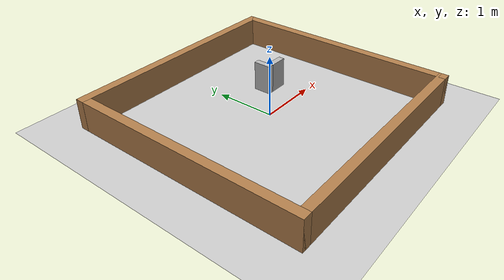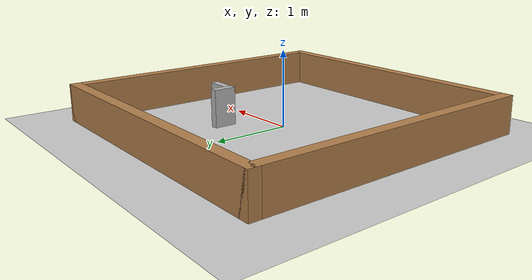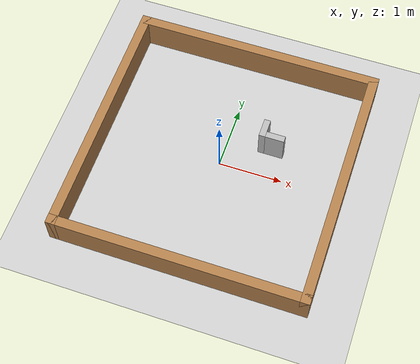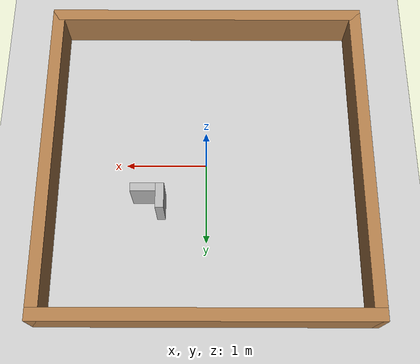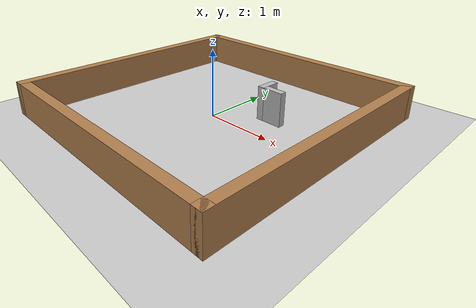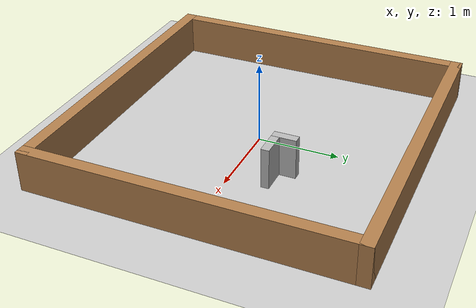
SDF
<?xml version="1.0" ?>
<sdf version="1.6">
  <world name="obstacle_avoid">
    <include><uri>model://sun</uri></include>
    <include><uri>model://ground_plane</uri></include>
    <include><uri>model://turtlebot3_square</uri></include>

    <model name="box_a">
      <static>true</static>
      <pose>0.55 0.55 0.25 0 0 0</pose>
      <link name="link">
        <collision name="collision">
          <geometry>
            <box><size>0.1 0.3 0.5</size></box>
          </geometry>
        </collision>
        <visual name="visual">
          <geometry>
            <box><size>0.1 0.3 0.5</size></box>
          </geometry>
        </visual>
      </link>
    </model>

    <model name="box_b">
      <static>true</static>
      <pose>0.75 0.45 0.25 0 0 0</pose>
      <link name="link">
        <collision name="collision">
          <geometry>
            <box><size>0.3 0.1 0.5</size></box>
          </geometry>
        </collision>
        <visual name="visual">
          <geometry>
            <box><size>0.3 0.1 0.5</size></box>
          </geometry>
        </visual>
      </link>
    </model>
  </world>
</sdf>

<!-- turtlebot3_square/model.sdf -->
<sdf version='1.6'>
  <model name='turtlebot3_square'>
    <pose frame=''>0 0 0 0 -0 0</pose>
    <link name='Wall_0'>
      <collision name='Wall_0_Collision'>
        <geometry>
          <box>
            <size>4 0.15 0.5</size>
          </box>
        </geometry>
        <pose frame=''>0 0 0.25 0 -0 0</pose>
      </collision>
      <visual name='Wall_0_Visual'>
        <pose frame=''>0 0 0.25 0 -0 0</pose>
        <geometry>
          <box>
            <size>4 0.15 0.5</size>
          </box>
        </geometry>
        <material>
          <script>
            <uri>file://media/materials/scripts/gazebo.material</uri>
            <name>Gazebo/Wood</name>
          </script>
          <ambient>1 1 1 1</ambient>
        </material>
      </visual>
      <pose frame=''>0 1.925 0 0 -0 0</pose>
    </link>
    <link name='Wall_2'>
      <collision name='Wall_2_Collision'>
        <geometry>
          <box>
            <size>4 0.15 0.5</size>
          </box>
        </geometry>
        <pose frame=''>0 0 0.25 0 -0 0</pose>
      </collision>
      <visual name='Wall_2_Visual'>
        <pose frame=''>0 0 0.25 0 -0 0</pose>
        <geometry>
          <box>
            <size>4 0.15 0.5</size>
          </box>
        </geometry>
        <material>
          <script>
            <uri>file://media/materials/scripts/gazebo.material</uri>
            <name>Gazebo/Wood</name>
          </script>
          <ambient>1 1 1 1</ambient>
        </material>
      </visual>
      <pose frame=''>-1.925 0 0 0 0 -1.5708</pose>
    </link>
    <link name='Wall_3'>
      <collision name='Wall_3_Collision'>
        <geometry>
          <box>
            <size>4 0.15 0.5</size>
          </box>
        </geometry>
        <pose frame=''>0 0 0.25 0 -0 0</pose>
      </collision>
      <visual name='Wall_3_Visual'>
        <pose frame=''>0 0 0.25 0 -0 0</pose>
        <geometry>
          <box>
            <size>4 0.15 0.5</size>
          </box>
        </geometry>
        <material>
          <script>
            <uri>file://media/materials/scripts/gazebo.material</uri>
            <name>Gazebo/Wood</name>
          </script>
          <ambient>1 1 1 1</ambient>
        </material>
      </visual>
      <pose frame=''>0 -1.925 0 0 -0 0</pose>
    </link>
    <link name='Wall_4'>
      <collision name='Wall_4_Collision'>
        <geometry>
          <box>
            <size>4 0.15 0.5</size>
          </box>
        </geometry>
        <pose frame=''>0 0 0.25 0 -0 0</pose>
      </collision>
      <visual name='Wall_4_Visual'>
        <pose frame=''>0 0 0.25 0 -0 0</pose>
        <geometry>
          <box>
            <size>4 0.15 0.5</size>
          </box>
        </geometry>
        <material>
          <script>
            <uri>file://media/materials/scripts/gazebo.material</uri>
            <name>Gazebo/Wood</name>
          </script>
          <ambient>1 1 1 1</ambient>
        </material>
      </visual>
      <pose frame=''>1.925 0 0 0 -0 1.5708</pose>
    </link>
    <static>1</static>
  </model>
</sdf>
